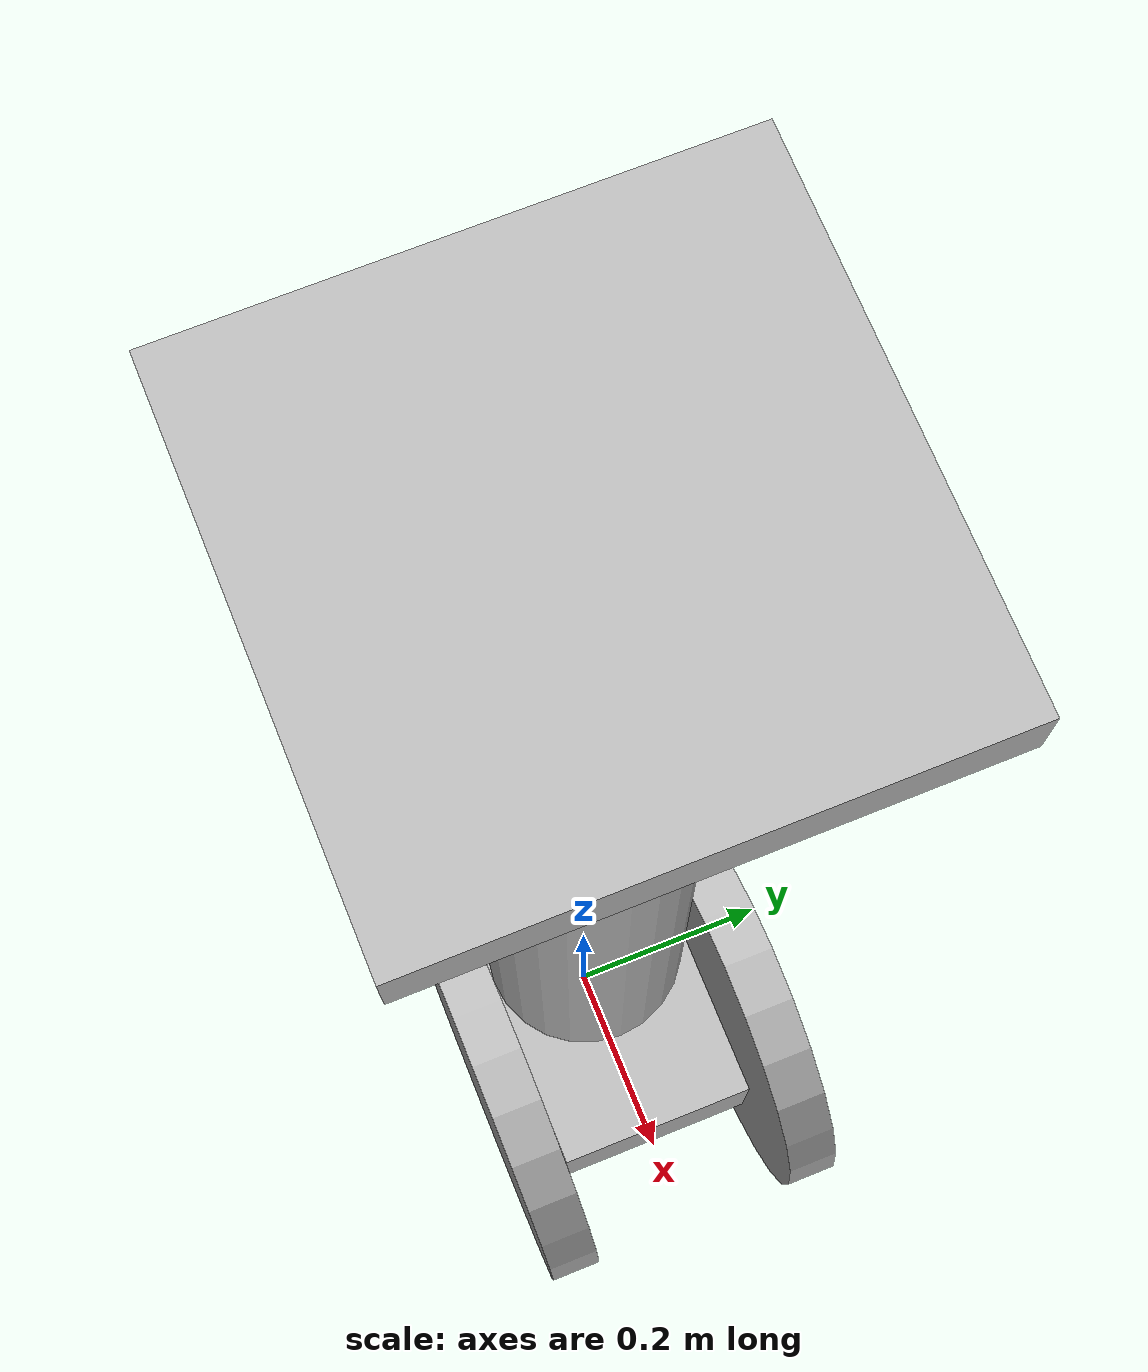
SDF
<?xml version='1.0'?>
<sdf version='1.9'>
  <model name='factory_bot'>
    <!-- http://gazebosim.org/tutorials/?tut=build_robot -->
    <pose>0 0 0 0 0 0</pose>

    <link name='chassis'>
      <pose>0 0 .1 0 0 0</pose>

      <collision name='chassis_collision'>
        <geometry>
          <box>
            <size>.4 .2 .1</size>
          </box>
        </geometry>
      </collision>
      <visual name='chassis_visual'>
        <geometry>
          <box>
            <size>.4 .2 .1</size>
          </box>
        </geometry>
      </visual>

      <collision name='caster_collision'>
        <pose>-0.15 0 -0.05 0 0 0</pose>
        <geometry>
          <sphere>
            <radius>.05</radius>
          </sphere>
        </geometry>
        <surface>
          <friction>
            <ode>
              <mu>0</mu>
              <mu2>0</mu2>
              <slip1>1.0</slip1>
              <slip2>1.0</slip2>
            </ode>
          </friction>
        </surface>
      </collision>
      <visual name='caster_visual'>
        <pose>-0.15 0 -0.05 0 0 0</pose>
        <geometry>
          <sphere>
            <radius>.05</radius>
          </sphere>
        </geometry>
      </visual>

      <visual name='torso_visual'>
        <pose>0. 0 .55 0 0. 0</pose>
        <geometry>
          <cylinder>
            <length>1</length>
            <radius>0.1</radius>
          </cylinder>
        </geometry>
      </visual>

      <visual name='top_visual'>
        <pose>0. 0 1.1 0 0. 0</pose>
        <geometry>
          <box>
            <size>.4 .4 .05</size>
          </box>
        </geometry>
      </visual>

    </link>

    <link name='left_wheel'>
      <pose>0.1 0.13 0.1 0 1.5707 1.5707</pose>
      <collision name='left_wheel_collision'>
        <geometry>
          <cylinder>
            <radius>.2</radius>
            <length>.05</length>
          </cylinder>
        </geometry>
      </collision>
      <visual name='left_wheel_visual'>
        <geometry>
          <cylinder>
            <radius>.2</radius>
            <length>.05</length>
          </cylinder>
        </geometry>
      </visual>
    </link>

    <link name='right_wheel'>
      <pose>0.1 -0.13 0.1 0 1.5707 1.5707</pose>
      <collision name='right_wheel_collision'>
        <geometry>
          <cylinder>
            <radius>.2</radius>
            <length>.05</length>
          </cylinder>
        </geometry>
      </collision>
      <visual name='right_wheel_visual'>
        <geometry>
          <cylinder>
            <radius>.2</radius>
            <length>.05</length>
          </cylinder>
        </geometry>
      </visual>
      </link>

    <joint type='revolute' name='left_wheel_hinge'>
      <pose>0 0 -0.03 0 0 0</pose>
      <child>left_wheel</child>
      <parent>chassis</parent>
      <axis>
        <xyz>0 1 0</xyz>
      </axis>
    </joint>

    <joint type='revolute' name='right_wheel_hinge'>
      <pose>0 0 0.03 0 0 0</pose>
      <child>right_wheel</child>
      <parent>chassis</parent>
      <axis>
        <xyz>0 1 0</xyz>
      </axis>
    </joint>

  </model>
</sdf>
